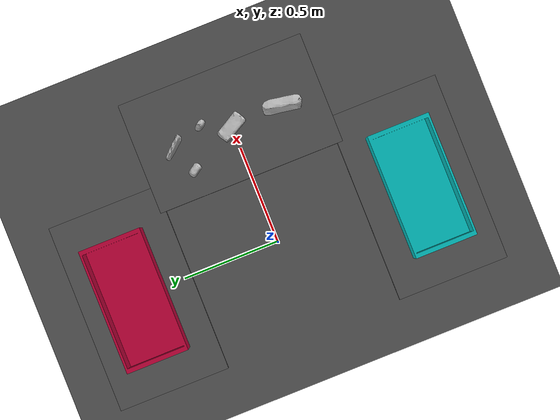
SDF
<sdf version="1.6">
 <world name="default">
  <light name="sun" type="directional">
   <pose>0 0 10 0 -0 0</pose>
   <diffuse>0.8 0.8 0.8 1</diffuse>
   <specular>0.2 0.2 0.2 1</specular>
   <attenuation>
    <range>1000</range>
    <constant>0.9</constant>
    <linear>0.01</linear>
    <quadratic>0.001</quadratic>
   </attenuation>
   <direction>-0.5 0.1 -0.9</direction>
  </light>
  <model name="ground_plane">
   <static>1</static>
   <link name="link">
    <collision name="collision">
     <geometry><plane><normal>0 0 1</normal><size>100 100</size></plane></geometry>
     <surface><friction><ode><mu>100</mu><mu2>50</mu2></ode></friction></surface>
    </collision>
    <visual name="visual">
     <cast_shadows>0</cast_shadows>
     <geometry><plane><normal>0 0 1</normal><size>100 100</size></plane></geometry>
     <material>
      <script><uri>file://media/materials/scripts/gazebo.material</uri><name>Gazebo/DarkGrey</name></script>
     </material>
    </visual>
   </link>
  </model>
  <gravity>0 0 -9.8</gravity>
  <magnetic_field>6e-06 2.3e-05 -4.2e-05</magnetic_field>
  <atmosphere type="adiabatic"/>
  <physics name="default_physics" default="0" type="ode">
   <max_step_size>0.001</max_step_size>
   <real_time_factor>1</real_time_factor>
   <real_time_update_rate>1000</real_time_update_rate>
  </physics>
  <scene><ambient>0.4 0.4 0.4 1</ambient><background>0.7 0.7 0.7 1</background><shadows>1</shadows></scene>
  <spherical_coordinates>
   <surface_model>EARTH_WGS84</surface_model>
   <latitude_deg>0</latitude_deg>
   <longitude_deg>0</longitude_deg>
   <elevation>0</elevation>
   <heading_deg>0</heading_deg>
  </spherical_coordinates>
  <model name="dropbox">
   <link name="link_0">
    <pose>0 -0 0 0 0 -1.56873</pose>
    <inertial>
     <mass>1</mass>
     <inertia>
      <ixx>0.166667</ixx>
      <ixy>0</ixy>
      <ixz>0</ixz>
      <iyy>0.166667</iyy>
      <iyz>0</iyz>
      <izz>0.166667</izz>
     </inertia>
    </inertial>
    <visual name="visual">
     <geometry><mesh><uri>model://dropbox/meshes/dropbox.dae</uri><scale>1 1 1</scale></mesh></geometry>
     <material>
      <lighting>1</lighting>
      <script><uri>file://media/materials/scripts/gazebo.material</uri><name>Gazebo/Grey</name></script>
      <ambient>0 0.3 0.3 1</ambient>
      <diffuse>0 0.7 0.7 1</diffuse>
      <specular>0 0.01 0.01 1</specular>
      <emissive>0 0 0 1</emissive>
     </material>
    </visual>
    <collision name="collision">
     <geometry><mesh><uri>model://dropbox/meshes/dropbox.dae</uri><scale>1 1 1</scale></mesh></geometry>
     <surface>
      <friction>
       <ode><mu>1</mu><mu2>1</mu2><fdir1>0 0 0</fdir1><slip1>0</slip1><slip2>0</slip2></ode>
       <torsional>
        <coefficient>1</coefficient>
        <patch_radius>0</patch_radius>
        <surface_radius>0</surface_radius>
        <use_patch_radius>1</use_patch_radius>
        <ode><slip>0</slip></ode>
       </torsional>
      </friction>
      <bounce><restitution_coefficient>0</restitution_coefficient><threshold>1e+06</threshold></bounce>
      <contact>
       <collide_without_contact>0</collide_without_contact>
       <collide_without_contact_bitmask>1</collide_without_contact_bitmask>
       <collide_bitmask>1</collide_bitmask>
       <ode>
        <soft_cfm>0</soft_cfm>
        <soft_erp>0.2</soft_erp>
        <kp>1e+13</kp>
        <kd>1</kd>
        <max_vel>0.01</max_vel>
        <min_depth>0</min_depth>
       </ode>
       <bullet>
        <split_impulse>1</split_impulse>
        <split_impulse_penetration_threshold>-0.01</split_impulse_penetration_threshold>
        <soft_cfm>0</soft_cfm>
        <soft_erp>0.2</soft_erp>
        <kp>1e+13</kp>
        <kd>1</kd>
       </bullet>
      </contact>
     </surface>
    </collision>
   </link>
   <static>1</static>
   <pose>0 -0.71 0.605 0 -0 0</pose>
  </model>
  <model name="dropbox_clone">
   <link name="link_0">
    <pose>0 -0 0 0 0 -1.56873</pose>
    <inertial>
     <mass>1</mass>
     <inertia>
      <ixx>0.166667</ixx>
      <ixy>0</ixy>
      <ixz>0</ixz>
      <iyy>0.166667</iyy>
      <iyz>0</iyz>
      <izz>0.166667</izz>
     </inertia>
    </inertial>
    <visual name="visual">
     <geometry><mesh><uri>model://dropbox/meshes/dropbox.dae</uri><scale>1 1 1</scale></mesh></geometry>
     <material>
      <lighting>1</lighting>
      <script><uri>file://media/materials/scripts/gazebo.material</uri><name>Gazebo/Grey</name></script>
      <ambient>0.3 0 0.1 1</ambient>
      <diffuse>0.7 0 0.2 1</diffuse>
      <specular>0.01 0 0.01 1</specular>
      <emissive>0 0 0 1</emissive>
     </material>
    </visual>
    <collision name="collision">
     <geometry><mesh><uri>model://dropbox/meshes/dropbox.dae</uri><scale>1 1 1</scale></mesh></geometry>
     <surface>
      <friction>
       <ode><mu>1</mu><mu2>1</mu2><fdir1>0 0 0</fdir1><slip1>0</slip1><slip2>0</slip2></ode>
       <torsional>
        <coefficient>1</coefficient>
        <patch_radius>0</patch_radius>
        <surface_radius>0</surface_radius>
        <use_patch_radius>1</use_patch_radius>
        <ode><slip>0</slip></ode>
       </torsional>
      </friction>
      <bounce><restitution_coefficient>0</restitution_coefficient><threshold>1e+06</threshold></bounce>
      <contact>
       <collide_without_contact>0</collide_without_contact>
       <collide_without_contact_bitmask>1</collide_without_contact_bitmask>
       <collide_bitmask>1</collide_bitmask>
       <ode>
        <soft_cfm>0</soft_cfm>
        <soft_erp>0.2</soft_erp>
        <kp>1e+13</kp>
        <kd>1</kd>
        <max_vel>0.01</max_vel>
        <min_depth>0</min_depth>
       </ode>
       <bullet>
        <split_impulse>1</split_impulse>
        <split_impulse_penetration_threshold>-0.01</split_impulse_penetration_threshold>
        <soft_cfm>0</soft_cfm>
        <soft_erp>0.2</soft_erp>
        <kp>1e+13</kp>
        <kd>1</kd>
       </bullet>
      </contact>
     </surface>
    </collision>
   </link>
   <static>1</static>
   <pose>0 0.71 0.605 0 -0 0</pose>
  </model>
  <model name="short_table">
   <link name="link_0">
    <inertial>
     <mass>1</mass>
     <inertia>
      <ixx>0.166667</ixx>
      <ixy>0</ixy>
      <ixz>0</ixz>
      <iyy>0.166667</iyy>
      <iyz>0</iyz>
      <izz>0.166667</izz>
     </inertia>
    </inertial>
    <visual name="visual">
     <geometry><mesh><uri>model://short_table/meshes/short_table.dae</uri><scale>1 1 1</scale></mesh></geometry>
     <material>
      <lighting>1</lighting>
      <script><uri>file://media/materials/scripts/gazebo.material</uri><name>Gazebo/DarkGray</name></script>
     </material>
    </visual>
    <collision name="collision">
     <geometry><mesh><uri>model://short_table/meshes/short_table.dae</uri><scale>1 1 1</scale></mesh></geometry>
     <surface>
      <friction>
       <ode><mu>1</mu><mu2>1</mu2><fdir1>0 0 0</fdir1><slip1>0</slip1><slip2>0</slip2></ode>
       <torsional>
        <coefficient>1</coefficient>
        <patch_radius>0</patch_radius>
        <surface_radius>0</surface_radius>
        <use_patch_radius>1</use_patch_radius>
        <ode><slip>0</slip></ode>
       </torsional>
      </friction>
      <bounce><restitution_coefficient>0</restitution_coefficient><threshold>1e+06</threshold></bounce>
      <contact>
       <collide_without_contact>0</collide_without_contact>
       <collide_without_contact_bitmask>1</collide_without_contact_bitmask>
       <collide_bitmask>1</collide_bitmask>
       <ode>
        <soft_cfm>0</soft_cfm>
        <soft_erp>0.2</soft_erp>
        <kp>1e+13</kp>
        <kd>1</kd>
        <max_vel>0.01</max_vel>
        <min_depth>0</min_depth>
       </ode>
       <bullet>
        <split_impulse>1</split_impulse>
        <split_impulse_penetration_threshold>-0.01</split_impulse_penetration_threshold>
        <soft_cfm>0</soft_cfm>
        <soft_erp>0.2</soft_erp>
        <kp>1e+13</kp>
        <kd>1</kd>
       </bullet>
      </contact>
     </surface>
    </collision>
   </link>
   <static>1</static>
   <pose>0.6 0 0 0 -0 0</pose>
  </model>
  <model name="short_table_clone">
   <link name="link_0">
    <inertial>
     <mass>1</mass>
     <inertia>
      <ixx>0.166667</ixx>
      <ixy>0</ixy>
      <ixz>0</ixz>
      <iyy>0.166667</iyy>
      <iyz>0</iyz>
      <izz>0.166667</izz>
     </inertia>
    </inertial>
    <visual name="visual">
     <geometry><mesh><uri>model://short_table/meshes/short_table.dae</uri><scale>1 1 1</scale></mesh></geometry>
     <material>
      <lighting>1</lighting>
      <script><uri>file://media/materials/scripts/gazebo.material</uri><name>Gazebo/DarkGray</name></script>
     </material>
    </visual>
    <collision name="collision">
     <geometry><mesh><uri>model://short_table/meshes/short_table.dae</uri><scale>1 1 1</scale></mesh></geometry>
     <surface>
      <friction>
       <ode><mu>1</mu><mu2>1</mu2><fdir1>0 0 0</fdir1><slip1>0</slip1><slip2>0</slip2></ode>
       <torsional>
        <coefficient>1</coefficient>
        <patch_radius>0</patch_radius>
        <surface_radius>0</surface_radius>
        <use_patch_radius>1</use_patch_radius>
        <ode><slip>0</slip></ode>
       </torsional>
      </friction>
      <bounce><restitution_coefficient>0</restitution_coefficient><threshold>1e+06</threshold></bounce>
      <contact>
       <collide_without_contact>0</collide_without_contact>
       <collide_without_contact_bitmask>1</collide_without_contact_bitmask>
       <collide_bitmask>1</collide_bitmask>
       <ode>
        <soft_cfm>0</soft_cfm>
        <soft_erp>0.2</soft_erp>
        <kp>1e+13</kp>
        <kd>1</kd>
        <max_vel>0.01</max_vel>
        <min_depth>0</min_depth>
       </ode>
       <bullet>
        <split_impulse>1</split_impulse>
        <split_impulse_penetration_threshold>-0.01</split_impulse_penetration_threshold>
        <soft_cfm>0</soft_cfm>
        <soft_erp>0.2</soft_erp>
        <kp>1e+13</kp>
        <kd>1</kd>
       </bullet>
      </contact>
     </surface>
    </collision>
   </link>
   <static>1</static>
   <pose>0 -0.7 0 0 -0 1.57</pose>
  </model>
  <model name="short_table_clone_0">
   <link name="link_0">
    <inertial>
     <mass>1</mass>
     <inertia>
      <ixx>0.166667</ixx>
      <ixy>0</ixy>
      <ixz>0</ixz>
      <iyy>0.166667</iyy>
      <iyz>0</iyz>
      <izz>0.166667</izz>
     </inertia>
    </inertial>
    <visual name="visual">
     <geometry><mesh><uri>model://short_table/meshes/short_table.dae</uri><scale>1 1 1</scale></mesh></geometry>
     <material>
      <lighting>1</lighting>
      <script><uri>file://media/materials/scripts/gazebo.material</uri><name>Gazebo/DarkGray</name></script>
     </material>
    </visual>
    <collision name="collision">
     <geometry><mesh><uri>model://short_table/meshes/short_table.dae</uri><scale>1 1 1</scale></mesh></geometry>
     <surface>
      <friction>
       <ode><mu>1</mu><mu2>1</mu2><fdir1>0 0 0</fdir1><slip1>0</slip1><slip2>0</slip2></ode>
       <torsional>
        <coefficient>1</coefficient>
        <patch_radius>0</patch_radius>
        <surface_radius>0</surface_radius>
        <use_patch_radius>1</use_patch_radius>
        <ode><slip>0</slip></ode>
       </torsional>
      </friction>
      <bounce><restitution_coefficient>0</restitution_coefficient><threshold>1e+06</threshold></bounce>
      <contact>
       <collide_without_contact>0</collide_without_contact>
       <collide_without_contact_bitmask>1</collide_without_contact_bitmask>
       <collide_bitmask>1</collide_bitmask>
       <ode>
        <soft_cfm>0</soft_cfm>
        <soft_erp>0.2</soft_erp>
        <kp>1e+13</kp>
        <kd>1</kd>
        <max_vel>0.01</max_vel>
        <min_depth>0</min_depth>
       </ode>
       <bullet>
        <split_impulse>1</split_impulse>
        <split_impulse_penetration_threshold>-0.01</split_impulse_penetration_threshold>
        <soft_cfm>0</soft_cfm>
        <soft_erp>0.2</soft_erp>
        <kp>1e+13</kp>
        <kd>1</kd>
       </bullet>
      </contact>
     </surface>
    </collision>
   </link>
   <static>1</static>
   <pose>0 0.7 0 0 -0 1.57</pose>
  </model>
  <model name="soap">
   <link name="soap_link">
    <inertial>
     <mass>0.08</mass>
     <inertia><ixx>1</ixx><ixy>0</ixy><ixz>0</ixz><iyy>1</iyy><iyz>0</iyz><izz>1</izz></inertia>
    </inertial>
    <visual name="soap_visual">
     <material>
      <script>
       <uri>model://soap/materials/scripts</uri>
       <uri>model://soap/materials/textures</uri>
       <name>soap</name>
      </script>
     </material>
     <geometry><mesh><uri>model://soap/meshes/soap.dae</uri></mesh></geometry>
    </visual>
    <collision name="soap_collision">
     <pose>0.02 0.002 0.05 0 0 -1.05</pose>
     <geometry><box><size>0.14 0.065 0.1</size></box></geometry>
    </collision>
   </link>
   <pose>0.56 0 0.609995 2e-06 -3e-06 0</pose>
  </model>
  <model name="biscuits">
   <link name="biscuits_link">
    <inertial>
     <mass>0.1</mass>
     <inertia><ixx>1</ixx><ixy>0</ixy><ixz>0</ixz><iyy>1</iyy><iyz>0</iyz><izz>1</izz></inertia>
    </inertial>
    <visual name="biscuits_visual">
     <material>
      <script>
       <uri>model://biscuits/materials/scripts</uri>
       <uri>model://biscuits/materials/textures</uri>
       <name>biscuits</name>
      </script>
     </material>
     <geometry><mesh><uri>model://biscuits/meshes/biscuits.dae</uri></mesh></geometry>
    </visual>
    <collision name="biscuits_collision">
     <pose>0.015 0.01 0.075 0 -0 2.2</pose>
     <geometry><box><size>0.19 0.06 0.15</size></box></geometry>
    </collision>
   </link>
   <pose>0.57 -0.246 0.609995 1e-06 -3e-06 -0.82</pose>
  </model>
  <model name="glue">
   <link name="glue_link">
    <inertial>
     <mass>0.08</mass>
     <inertia><ixx>1</ixx><ixy>0</ixy><ixz>0</ixz><iyy>1</iyy><iyz>0</iyz><izz>1</izz></inertia>
    </inertial>
    <visual name="glue_visual">
     <material>
      <script>
       <uri>model://glue/materials/scripts</uri>
       <uri>model://glue/materials/textures</uri>
       <name>glue</name>
      </script>
     </material>
     <geometry><mesh><uri>model://glue/meshes/glue.dae</uri></mesh></geometry>
    </visual>
    <collision name="glue_collision">
     <pose>0 0 0.067 0 0 -0.95</pose>
     <geometry><box><size>0.054 0.032 0.133</size></box></geometry>
    </collision>
   </link>
   <pose>0.633982 0.132012 0.609497 -3.9e-05 -3.6e-05 -2.3e-05</pose>
  </model>
  <model name="book">
   <link name="book_link">
    <inertial>
     <mass>0.08</mass>
     <inertia><ixx>1</ixx><ixy>0</ixy><ixz>0</ixz><iyy>1</iyy><iyz>0</iyz><izz>1</izz></inertia>
    </inertial>
    <visual name="book_visual">
     <material>
      <script>
       <uri>model://book/materials/scripts</uri>
       <uri>model://book/materials/textures</uri>
       <name>book</name>
      </script>
     </material>
     <geometry><mesh><uri>model://book/meshes/book.dae</uri></mesh></geometry>
    </visual>
    <collision name="book_collision">
     <pose>0 0 0.103 0 -0 2.3</pose>
     <geometry><box><size>0.13 0.02 0.206</size></box></geometry>
    </collision>
   </link>
   <pose>0.589998 0.280002 0.609994 0.00015 -0.000286 -5e-06</pose>
  </model>
  <model name="soap2">
   <link name="soap2_link">
    <inertial>
     <mass>0.08</mass>
     <inertia><ixx>1</ixx><ixy>0</ixy><ixz>0</ixz><iyy>1</iyy><iyz>0</iyz><izz>1</izz></inertia>
    </inertial>
    <visual name="soap2_visual">
     <material>
      <script>
       <uri>model://soap2/materials/scripts</uri>
       <uri>model://soap2/materials/textures</uri>
       <name>soap2</name>
      </script>
     </material>
     <geometry><mesh><uri>model://soap2/meshes/soap2.dae</uri></mesh></geometry>
    </visual>
    <collision name="soap2_collision">
     <pose>-0.002 0.00502 0.05 0 0 -1</pose>
     <geometry><box><size>0.065 0.04 0.105</size></box></geometry>
    </collision>
   </link>
   <pose>0.46 0.225 0.612495 -4e-06 -1.4e-05 0</pose>
  </model>
 </world>
</sdf>
